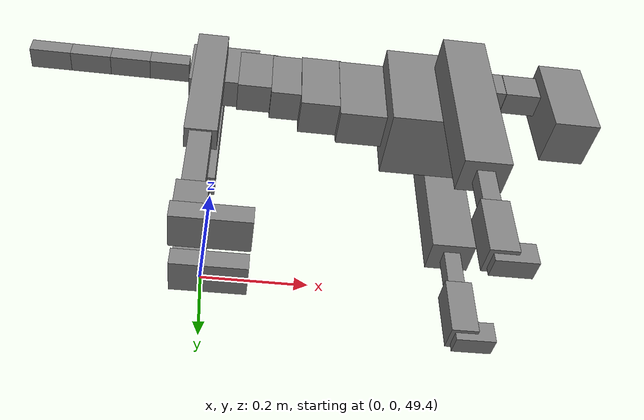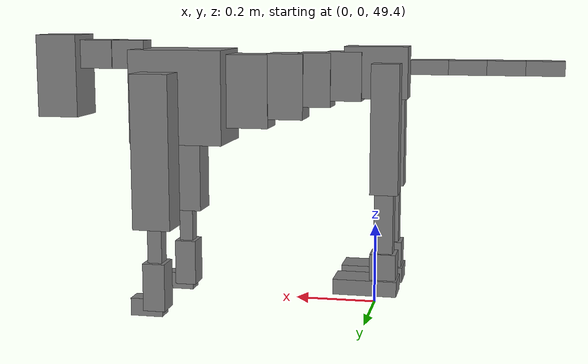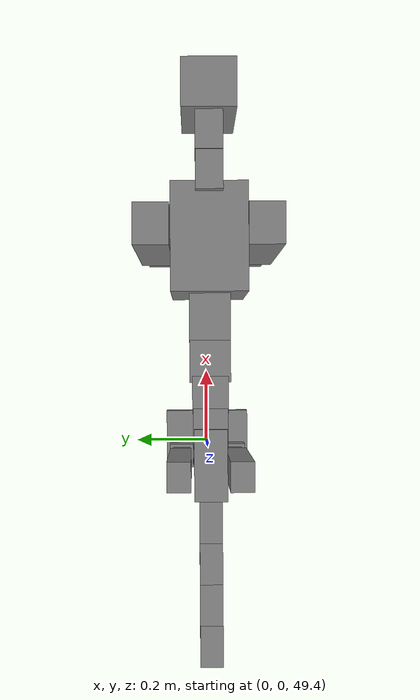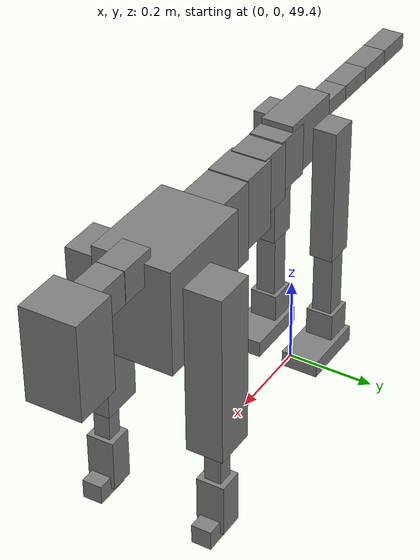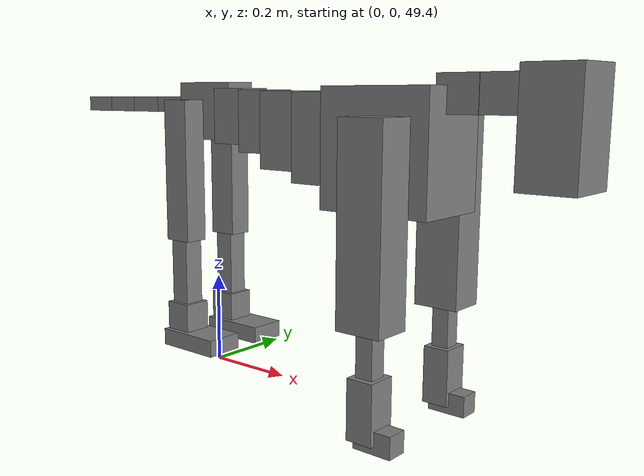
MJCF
<mujoco model="dog">

    <default>
        <joint armature="0.02" stiffness="1" damping="0.2" limited="true"/>
        <geom condim="3" friction="1 0.05 0.05" margin="0.01"/>
        <motor ctrllimited="true" ctrlrange="-1.0 1.0" forcelimited="true" gear="50"/>
    </default>

    <compiler inertiafromgeom="true" angle="radian"/>

    <option timestep="0.016" iterations="50" tolerance="1e-10" solver="Newton" jacobian="dense" cone="pyramidal"/>

    <size nconmax="20000" njmax="60000" nstack="5000000"/>
    <visual>
        <map force="0.1" zfar="30"/>
        <rgba haze="0.15 0.25 0.35 1"/>
        <quality shadowsize="2048"/>
        <global offwidth="800" offheight="800"/>
    </visual>

    <asset>
        <texture type="skybox" builtin="gradient" rgb1="0.3 0.5 0.7" rgb2="0 0 0" width="512" height="512"/>
        <texture name="texplane" type="2d" builtin="checker" rgb1=".2 .3 .4" rgb2=".1 0.15 0.2" width="512" height="512"
                 mark="cross" markrgb=".8 .8 .8"/>
        <texture name="texgeom" type="cube" builtin="flat" mark="cross" width="127" height="1278" rgb1="0.8 0.6 0.4"
                 rgb2="0.8 0.6 0.4" markrgb="1 1 1" random="0.01"/>

        <material name="matplane" reflectance="0.3" texture="texplane" texrepeat="1 1" texuniform="true"/>
        <material name="matgeom" texture="texgeom" texuniform="true" rgba="0.8 0.6 .4 1"/>
    </asset>

    <worldbody>
        <geom name="floor" pos="0 0 0" size="0 0 .25" type="plane" material="matplane" condim="3"/>

        <light directional="false" diffuse=".2 .2 .2" specular="0 0 0" pos="0 0 5" dir="0 0 -1" castshadow="false"/>
        <light mode="targetbodycom" target="torso" directional="false" diffuse=".8 .8 .8" specular="0.3 0.3 0.3"
               pos="0 0 4.0" dir="0 0 -1"/>

        <body name="root" pos="0 0 50">
            <freejoint name="root_1"/>
            <geom type="box" pos="0 0 -0.02" size="0.0774  0.0358  0.063" density="2030"/>

            <body name="spine1" pos="0.054 0 0">
                <joint name="spine1_y" axis="0 1 0" range="0 0.7" limited="true"/>
                <geom type="box" pos="0.02375 0 -0.03" size="0.04375  0.0375  0.05985" density="2030"/>

                <body name="spine2" pos="0.0612 0 0">
                    <joint name="spine2_y" axis="0 1 0" range="-0.15 0.15" limited="true"/>
                    <geom type="box" pos="0.03555  0  -0.04" size="0.04055  0.039  0.06615" density="2030"/>

                    <body name="spine3" pos="0.0730 0 0">
                        <joint name="spine3_y" axis="0 1 0" range="-0.15 0.15" limited="true"/>
                        <geom type="box" pos="0.03555  0  -0.057" size="0.04555  0.0445  0.081" density="2030"/>

                        <body name="spine4" pos="0.0780 0 0">
                            <joint name="spine4_y" axis="0 1 0" range="-0.15 0.15" limited="true"/>
                            <geom type="box" pos="0.05265  0  -0.07" size="0.05265  0.045  0.09135" density="2030"/>

                            <body name="torso" pos="0.1082 0 0">
                                <joint name="torso_y" axis="0 1 0" range="-0.15 0.15" limited="true"/>
                                <geom type="box" pos="0.11925  0  -0.085" size="0.11925  0.085  0.11745"
                                      density="2030"/>

                                <body name="neck1" pos="0.2160  0   0.0180">
                                    <joint name="neck1_y" axis="0 1 0" range="-1.2  -1" limited="true"/>
                                    <geom type="box" pos="0.0423  0  0" size="0.0423  0.03  0.036" density="2325"/>

                                    <body name="neck2" pos="0.0853  0  0">
                                        <joint name="neck2_y" axis="0 1 0" range="0.1  0" limited="true"/>
                                        <geom type="box" pos="0.0423  0  0" size="0.0423  0.03  0.036" density="2325"/>

                                        <body name="head" pos="0.0853  0  0">
                                            <joint name="head_y" axis="0 1 0" range="-0.3  -0.2" limited="true"/>
                                            <geom type="box" pos="0.0531  0  -0.055" size="0.0531  0.06  0.1044"
                                                  density="4030"/>

                                        </body>
                                    </body>
                                </body>

                                <body name="front_shoulder" pos="0.156  0   -0.0480">
                                    <joint name="front_shoulder_y" axis="0 1 0" range="-1 1.5" limited="true"/>
                                    <geom type="box" pos="0 0.13 -0.1646" size="0.0478  0.0409  0.1913" density="1158"/>
                                    <geom type="box" pos="0 -0.13 -0.1646" size="0.0478  0.0409  0.1913"
                                          density="1158"/>

                                    <body name="front_elbow" pos="0  0  -0.3292">
                                        <joint name="front_elbow_y" axis="0 1 0" range="-2 0" limited="true"/>
                                        <geom type="box" pos="0 0.13 -0.0632" size="0.0181  0.0185  0.0632"
                                              density="1081"/>
                                        <geom type="box" pos="0 -0.13 -0.0632" size="0.0181  0.0185  0.0632"
                                              density="1081"/>

                                        <body name="front_wrist" pos="0  0  -0.1265">
                                            <joint name="front_wrist_y" axis="0 1 0" range="-0.2 0" limited="true"/>
                                            <geom type="box" pos="0 0.13 -0.0468" size="0.0281  0.0312  0.0599"
                                                  density="1664"/>
                                            <geom type="box" pos="0 -0.13 -0.0468" size="0.0281  0.0312  0.0599"
                                                  density="1664"/>

                                            <body name="front_finger_end" pos="0  0  -0.0935">
                                                <joint name="front_finger_y" axis="0 1 0" range="-0.4 1"
                                                       limited="true"/>
                                                <geom type="box" pos="0.0224  0.13  -0.0071"
                                                      size="0.0411  0.0224  0.0221" density="1515"/>
                                                <geom type="box" pos="0.0224  -0.13  -0.0071"
                                                      size="0.0411  0.0224  0.0221" density="1515"/>

                                            </body>

                                        </body>
                                    </body>
                                </body>

                            </body>
                        </body>
                    </body>
                </body>
            </body>

            <body name="back_hip" pos="-0.03 0 -0.018">
                <joint name="back_hip_y" axis="0 1 0" range="-1.5 0.3" limited="true"/>
                <geom type="box" pos="0 0.07 -0.1339" size="0.0339  0.0266  0.1567" density="1154"/>
                <geom type="box" pos="0 -0.07 -0.1339" size="0.0339  0.0266  0.1567" density="1154"/>

                <body name="back_knee" pos="0  0  -0.2678">
                    <joint name="back_knee_y" axis="0 1 0" range="0 2.8" limited="true"/>
                    <geom type="box" pos="0 0.07 -0.0892" size="0.0229  0.0225  0.1048" density="1227"/>
                    <geom type="box" pos="0 -0.07 -0.0892" size="0.0229  0.0225  0.1048" density="1227"/>

                    <body name="back_ankle" pos="0  0  -0.1784">
                        <joint name="back_ankle_y" axis="0 1 0" range="-2.2 0" limited="true"/>
                        <geom type="box" pos="0 0.07 -0.0337" size="0.0314  0.0314  0.0450" density="1284"/>
                        <geom type="box" pos="0 -0.07 -0.0337" size="0.0314  0.0314  0.0450" density="1284"/>

                        <body name="back_toe_end" pos="0  0  -0.0674">
                            <joint name="back_toe_y" axis="0 1 0" range="-0.4 1" limited="true"/>
                            <geom type="box" pos="0.0422  0.07  -0.0037" size="0.0773  0.0422  0.0187" density="1515"/>
                            <geom type="box" pos="0.0422  -0.07  -0.0037" size="0.0773  0.0422  0.0187" density="1515"/>

                        </body>
                    </body>
                </body>
            </body>

            <body name="tail1" pos="-0.074 0 -0.006">
                <joint name="tail1_y" axis="0 1 0" range="-0.2 0.2" limited="true"/>
                <geom type="box" pos="-0.0536  0  0" size="0.045  0.025  0.0175" density="1587"/>

                <body name="tail2" pos="-0.09 0 0">
                    <joint name="tail2_y" axis="0 1 0" range="-0.2 0.2" limited="true"/>
                    <geom type="box" pos="-0.0536  0  0" size="0.045  0.025  0.0175" density="1587"/>

                    <body name="tail3" pos="-0.09 0 0">
                        <joint name="tail3_y" axis="0 1 0" range="-0.2 0.2" limited="true"/>
                        <geom type="box" pos="-0.0536  0  0" size="0.045  0.025  0.0175" density="1587"/>

                        <body name="tail4" pos="-0.09 0 0">
                            <joint name="tail4_y" axis="0 1 0" range="-0.2 0.2" limited="true"/>
                            <geom type="box" pos="-0.0536  0  0" size="0.045  0.025  0.0175" density="1587"/>

                        </body>
                    </body>
                </body>
            </body>
        </body>
    </worldbody>

    <actuator>
        <motor joint="spine1_y" forcerange="-150 150     "/>
        <motor joint="spine2_y" forcerange="-150 150     "/>
        <motor joint="spine3_y" forcerange="-150 150     "/>
        <motor joint="spine4_y" forcerange="-150 150     "/>
        <motor joint="torso_y" forcerange="-150 150     "/>
        <motor joint="neck1_y" forcerange="-100 100       "/>
        <motor joint="neck2_y" forcerange="-100 100       "/>
        <motor joint="head_y" forcerange="-150 150       "/>
        <motor joint="front_shoulder_y" forcerange="-179.75 192.73"/>
        <motor joint="front_elbow_y" forcerange="-123.51 110.87"/>
        <motor joint="front_wrist_y" forcerange="-130.49 119.46"/>
        <motor joint="front_finger_y" forcerange="-20.12 59.55"/>
        <motor joint="back_hip_y" forcerange="-335.40 219.59"/>
        <motor joint="back_knee_y" forcerange="-207.45 320.48"/>
        <motor joint="back_angle_y" forcerange="-199.99 202.15"/>
        <motor joint="back_toe_y" forcerange="-123.92 133.39"/>
        <motor joint="tail1_y" forcerange="-50 50     "/>
        <motor joint="tail2_y" forcerange="-50 50     "/>
        <motor joint="tail3_y" forcerange="-50 50     "/>
        <motor joint="tail4_y" forcerange="-50 50     "/>
    </actuator>
</mujoco>
